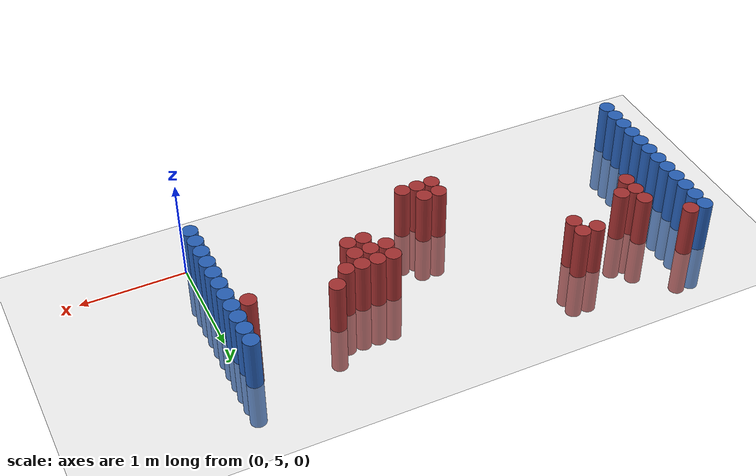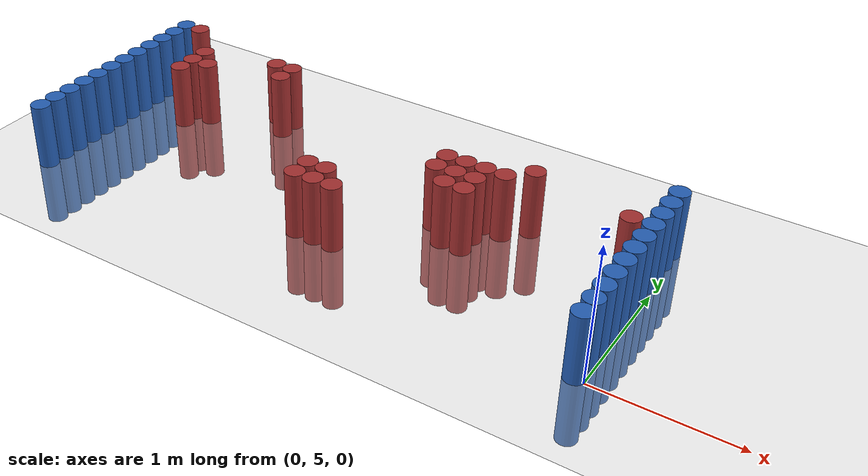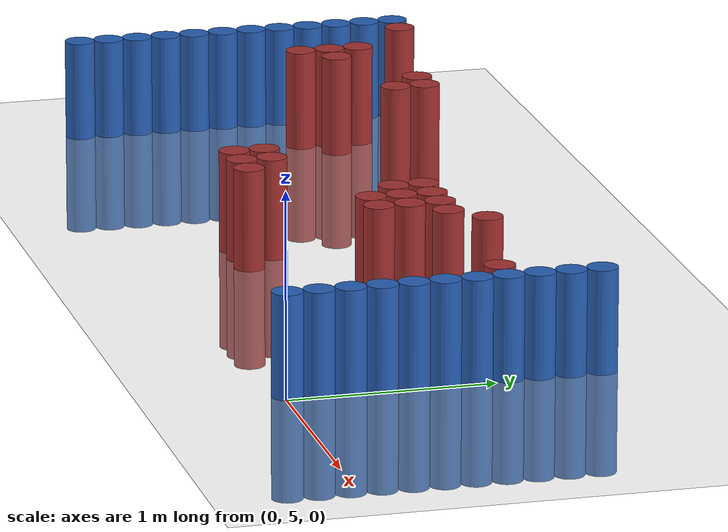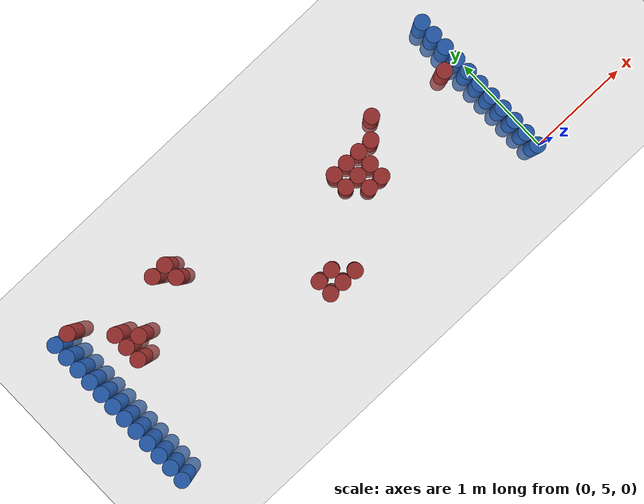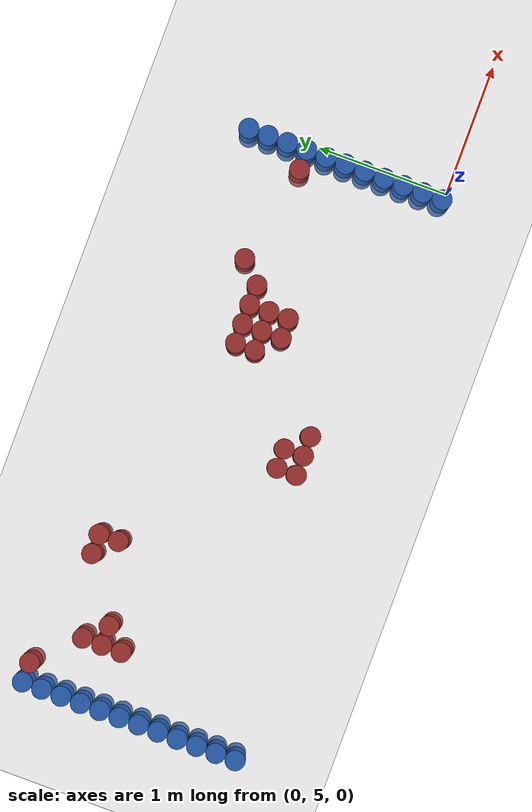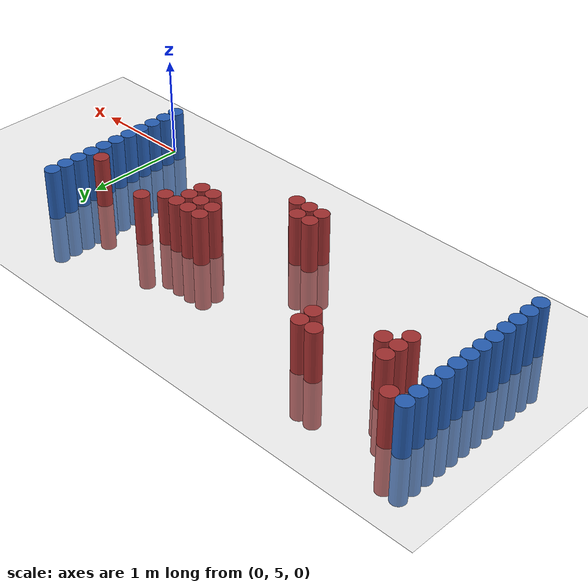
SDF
<sdf version="1.6">
 <world name="default">
  <model name="ground_plane">
   <static>1</static>
   <link name="link">
    <collision name="collision">
     <geometry><plane><normal>0 0 1</normal><size>100 100</size></plane></geometry>
     <surface><friction><ode><mu>100</mu><mu2>50</mu2></ode></friction></surface>
    </collision>
    <visual name="visual">
     <cast_shadows>0</cast_shadows>
     <geometry><plane><normal>0 0 1</normal><size>100 100</size></plane></geometry>
     <material>
      <script><uri>file://media/materials/scripts/gazebo.material</uri><name>Gazebo/Grey</name></script>
     </material>
    </visual>
   </link>
  </model>
  <model name="unit_cylinder_94">
   <static>1</static>
   <pose>-0.075000 5.025000 0.000000 0.000000 0.000000 0.000000</pose>
   <link name="link">
    <inertial>
     <mass>1</mass>
     <inertia><ixx>0.145833</ixx><ixy>0</ixy><ixz>0</ixz><iyy>0.145833</iyy><iyz>0</iyz><izz>0.125</izz></inertia>
    </inertial>
    <collision name="collision">
     <geometry><cylinder><radius>0.075000</radius><length>1</length></cylinder></geometry>
    </collision>
    <visual name="visual">
     <geometry><cylinder><radius>0.075000</radius><length>1</length></cylinder></geometry>
     <material>
      <ambient>0.152000 0.379000 0.720000 1</ambient>
      <diffuse>0.152000 0.379000 0.720000 1</diffuse>
     </material>
     <material>
      <script><name>Gazebo/Grey</name><uri>file://media/materials/scripts/gazebo.material</uri></script>
     </material>
    </visual>
   </link>
  </model>
  <model name="unit_cylinder_95">
   <static>1</static>
   <pose>-4.425000 5.025000 0.000000 0.000000 0.000000 0.000000</pose>
   <link name="link">
    <inertial>
     <mass>1</mass>
     <inertia><ixx>0.145833</ixx><ixy>0</ixy><ixz>0</ixz><iyy>0.145833</iyy><iyz>0</iyz><izz>0.125</izz></inertia>
    </inertial>
    <collision name="collision">
     <geometry><cylinder><radius>0.075000</radius><length>1</length></cylinder></geometry>
    </collision>
    <visual name="visual">
     <geometry><cylinder><radius>0.075000</radius><length>1</length></cylinder></geometry>
     <material>
      <ambient>0.152000 0.379000 0.720000 1</ambient>
      <diffuse>0.152000 0.379000 0.720000 1</diffuse>
     </material>
     <material>
      <script><name>Gazebo/Grey</name><uri>file://media/materials/scripts/gazebo.material</uri></script>
     </material>
    </visual>
   </link>
  </model>
  <model name="unit_cylinder_96">
   <static>1</static>
   <pose>-4.425000 5.175000 0.000000 0.000000 0.000000 0.000000</pose>
   <link name="link">
    <inertial>
     <mass>1</mass>
     <inertia><ixx>0.145833</ixx><ixy>0</ixy><ixz>0</ixz><iyy>0.145833</iyy><iyz>0</iyz><izz>0.125</izz></inertia>
    </inertial>
    <collision name="collision">
     <geometry><cylinder><radius>0.075000</radius><length>1</length></cylinder></geometry>
    </collision>
    <visual name="visual">
     <geometry><cylinder><radius>0.075000</radius><length>1</length></cylinder></geometry>
     <material>
      <ambient>0.152000 0.379000 0.720000 1</ambient>
      <diffuse>0.152000 0.379000 0.720000 1</diffuse>
     </material>
     <material>
      <script><name>Gazebo/Grey</name><uri>file://media/materials/scripts/gazebo.material</uri></script>
     </material>
    </visual>
   </link>
  </model>
  <model name="unit_cylinder_97">
   <static>1</static>
   <pose>-4.425000 5.325000 0.000000 0.000000 0.000000 0.000000</pose>
   <link name="link">
    <inertial>
     <mass>1</mass>
     <inertia><ixx>0.145833</ixx><ixy>0</ixy><ixz>0</ixz><iyy>0.145833</iyy><iyz>0</iyz><izz>0.125</izz></inertia>
    </inertial>
    <collision name="collision">
     <geometry><cylinder><radius>0.075000</radius><length>1</length></cylinder></geometry>
    </collision>
    <visual name="visual">
     <geometry><cylinder><radius>0.075000</radius><length>1</length></cylinder></geometry>
     <material>
      <ambient>0.152000 0.379000 0.720000 1</ambient>
      <diffuse>0.152000 0.379000 0.720000 1</diffuse>
     </material>
     <material>
      <script><name>Gazebo/Grey</name><uri>file://media/materials/scripts/gazebo.material</uri></script>
     </material>
    </visual>
   </link>
  </model>
  <model name="unit_cylinder_98">
   <static>1</static>
   <pose>-4.425000 5.475000 0.000000 0.000000 0.000000 0.000000</pose>
   <link name="link">
    <inertial>
     <mass>1</mass>
     <inertia><ixx>0.145833</ixx><ixy>0</ixy><ixz>0</ixz><iyy>0.145833</iyy><iyz>0</iyz><izz>0.125</izz></inertia>
    </inertial>
    <collision name="collision">
     <geometry><cylinder><radius>0.075000</radius><length>1</length></cylinder></geometry>
    </collision>
    <visual name="visual">
     <geometry><cylinder><radius>0.075000</radius><length>1</length></cylinder></geometry>
     <material>
      <ambient>0.152000 0.379000 0.720000 1</ambient>
      <diffuse>0.152000 0.379000 0.720000 1</diffuse>
     </material>
     <material>
      <script><name>Gazebo/Grey</name><uri>file://media/materials/scripts/gazebo.material</uri></script>
     </material>
    </visual>
   </link>
  </model>
  <model name="unit_cylinder_99">
   <static>1</static>
   <pose>-4.425000 5.625000 0.000000 0.000000 0.000000 0.000000</pose>
   <link name="link">
    <inertial>
     <mass>1</mass>
     <inertia><ixx>0.145833</ixx><ixy>0</ixy><ixz>0</ixz><iyy>0.145833</iyy><iyz>0</iyz><izz>0.125</izz></inertia>
    </inertial>
    <collision name="collision">
     <geometry><cylinder><radius>0.075000</radius><length>1</length></cylinder></geometry>
    </collision>
    <visual name="visual">
     <geometry><cylinder><radius>0.075000</radius><length>1</length></cylinder></geometry>
     <material>
      <ambient>0.152000 0.379000 0.720000 1</ambient>
      <diffuse>0.152000 0.379000 0.720000 1</diffuse>
     </material>
     <material>
      <script><name>Gazebo/Grey</name><uri>file://media/materials/scripts/gazebo.material</uri></script>
     </material>
    </visual>
   </link>
  </model>
  <model name="unit_cylinder_100">
   <static>1</static>
   <pose>-4.425000 5.775000 0.000000 0.000000 0.000000 0.000000</pose>
   <link name="link">
    <inertial>
     <mass>1</mass>
     <inertia><ixx>0.145833</ixx><ixy>0</ixy><ixz>0</ixz><iyy>0.145833</iyy><iyz>0</iyz><izz>0.125</izz></inertia>
    </inertial>
    <collision name="collision">
     <geometry><cylinder><radius>0.075000</radius><length>1</length></cylinder></geometry>
    </collision>
    <visual name="visual">
     <geometry><cylinder><radius>0.075000</radius><length>1</length></cylinder></geometry>
     <material>
      <ambient>0.152000 0.379000 0.720000 1</ambient>
      <diffuse>0.152000 0.379000 0.720000 1</diffuse>
     </material>
     <material>
      <script><name>Gazebo/Grey</name><uri>file://media/materials/scripts/gazebo.material</uri></script>
     </material>
    </visual>
   </link>
  </model>
  <model name="unit_cylinder_101">
   <static>1</static>
   <pose>-4.425000 5.925000 0.000000 0.000000 0.000000 0.000000</pose>
   <link name="link">
    <inertial>
     <mass>1</mass>
     <inertia><ixx>0.145833</ixx><ixy>0</ixy><ixz>0</ixz><iyy>0.145833</iyy><iyz>0</iyz><izz>0.125</izz></inertia>
    </inertial>
    <collision name="collision">
     <geometry><cylinder><radius>0.075000</radius><length>1</length></cylinder></geometry>
    </collision>
    <visual name="visual">
     <geometry><cylinder><radius>0.075000</radius><length>1</length></cylinder></geometry>
     <material>
      <ambient>0.152000 0.379000 0.720000 1</ambient>
      <diffuse>0.152000 0.379000 0.720000 1</diffuse>
     </material>
     <material>
      <script><name>Gazebo/Grey</name><uri>file://media/materials/scripts/gazebo.material</uri></script>
     </material>
    </visual>
   </link>
  </model>
  <model name="unit_cylinder_102">
   <static>1</static>
   <pose>-4.425000 6.075000 0.000000 0.000000 0.000000 0.000000</pose>
   <link name="link">
    <inertial>
     <mass>1</mass>
     <inertia><ixx>0.145833</ixx><ixy>0</ixy><ixz>0</ixz><iyy>0.145833</iyy><iyz>0</iyz><izz>0.125</izz></inertia>
    </inertial>
    <collision name="collision">
     <geometry><cylinder><radius>0.075000</radius><length>1</length></cylinder></geometry>
    </collision>
    <visual name="visual">
     <geometry><cylinder><radius>0.075000</radius><length>1</length></cylinder></geometry>
     <material>
      <ambient>0.152000 0.379000 0.720000 1</ambient>
      <diffuse>0.152000 0.379000 0.720000 1</diffuse>
     </material>
     <material>
      <script><name>Gazebo/Grey</name><uri>file://media/materials/scripts/gazebo.material</uri></script>
     </material>
    </visual>
   </link>
  </model>
  <model name="unit_cylinder_103">
   <static>1</static>
   <pose>-4.425000 6.225000 0.000000 0.000000 0.000000 0.000000</pose>
   <link name="link">
    <inertial>
     <mass>1</mass>
     <inertia><ixx>0.145833</ixx><ixy>0</ixy><ixz>0</ixz><iyy>0.145833</iyy><iyz>0</iyz><izz>0.125</izz></inertia>
    </inertial>
    <collision name="collision">
     <geometry><cylinder><radius>0.075000</radius><length>1</length></cylinder></geometry>
    </collision>
    <visual name="visual">
     <geometry><cylinder><radius>0.075000</radius><length>1</length></cylinder></geometry>
     <material>
      <ambient>0.152000 0.379000 0.720000 1</ambient>
      <diffuse>0.152000 0.379000 0.720000 1</diffuse>
     </material>
     <material>
      <script><name>Gazebo/Grey</name><uri>file://media/materials/scripts/gazebo.material</uri></script>
     </material>
    </visual>
   </link>
  </model>
  <model name="unit_cylinder_104">
   <static>1</static>
   <pose>-4.425000 6.375000 0.000000 0.000000 0.000000 0.000000</pose>
   <link name="link">
    <inertial>
     <mass>1</mass>
     <inertia><ixx>0.145833</ixx><ixy>0</ixy><ixz>0</ixz><iyy>0.145833</iyy><iyz>0</iyz><izz>0.125</izz></inertia>
    </inertial>
    <collision name="collision">
     <geometry><cylinder><radius>0.075000</radius><length>1</length></cylinder></geometry>
    </collision>
    <visual name="visual">
     <geometry><cylinder><radius>0.075000</radius><length>1</length></cylinder></geometry>
     <material>
      <ambient>0.152000 0.379000 0.720000 1</ambient>
      <diffuse>0.152000 0.379000 0.720000 1</diffuse>
     </material>
     <material>
      <script><name>Gazebo/Grey</name><uri>file://media/materials/scripts/gazebo.material</uri></script>
     </material>
    </visual>
   </link>
  </model>
  <model name="unit_cylinder_105">
   <static>1</static>
   <pose>-4.425000 6.525000 0.000000 0.000000 0.000000 0.000000</pose>
   <link name="link">
    <inertial>
     <mass>1</mass>
     <inertia><ixx>0.145833</ixx><ixy>0</ixy><ixz>0</ixz><iyy>0.145833</iyy><iyz>0</iyz><izz>0.125</izz></inertia>
    </inertial>
    <collision name="collision">
     <geometry><cylinder><radius>0.075000</radius><length>1</length></cylinder></geometry>
    </collision>
    <visual name="visual">
     <geometry><cylinder><radius>0.075000</radius><length>1</length></cylinder></geometry>
     <material>
      <ambient>0.152000 0.379000 0.720000 1</ambient>
      <diffuse>0.152000 0.379000 0.720000 1</diffuse>
     </material>
     <material>
      <script><name>Gazebo/Grey</name><uri>file://media/materials/scripts/gazebo.material</uri></script>
     </material>
    </visual>
   </link>
  </model>
  <model name="unit_cylinder_106">
   <static>1</static>
   <pose>-4.425000 6.675000 0.000000 0.000000 0.000000 0.000000</pose>
   <link name="link">
    <inertial>
     <mass>1</mass>
     <inertia><ixx>0.145833</ixx><ixy>0</ixy><ixz>0</ixz><iyy>0.145833</iyy><iyz>0</iyz><izz>0.125</izz></inertia>
    </inertial>
    <collision name="collision">
     <geometry><cylinder><radius>0.075000</radius><length>1</length></cylinder></geometry>
    </collision>
    <visual name="visual">
     <geometry><cylinder><radius>0.075000</radius><length>1</length></cylinder></geometry>
     <material>
      <ambient>0.152000 0.379000 0.720000 1</ambient>
      <diffuse>0.152000 0.379000 0.720000 1</diffuse>
     </material>
     <material>
      <script><name>Gazebo/Grey</name><uri>file://media/materials/scripts/gazebo.material</uri></script>
     </material>
    </visual>
   </link>
  </model>
  <model name="unit_cylinder_126">
   <static>1</static>
   <pose>-4.275000 6.675000 0.000000 0.000000 0.000000 0.000000</pose>
   <link name="link">
    <inertial>
     <mass>1</mass>
     <inertia><ixx>0.145833</ixx><ixy>0</ixy><ixz>0</ixz><iyy>0.145833</iyy><iyz>0</iyz><izz>0.125</izz></inertia>
    </inertial>
    <collision name="collision">
     <geometry><cylinder><radius>0.075000</radius><length>1</length></cylinder></geometry>
    </collision>
    <visual name="visual">
     <geometry><cylinder><radius>0.075000</radius><length>1</length></cylinder></geometry>
     <material>
      <ambient>0.648000 0.192000 0.192000 1</ambient>
      <diffuse>0.648000 0.192000 0.192000 1</diffuse>
     </material>
     <material>
      <script><name>Gazebo/Grey</name><uri>file://media/materials/scripts/gazebo.material</uri></script>
     </material>
    </visual>
   </link>
  </model>
  <model name="unit_cylinder_142">
   <static>1</static>
   <pose>-3.975000 6.075000 0.000000 0.000000 0.000000 0.000000</pose>
   <link name="link">
    <inertial>
     <mass>1</mass>
     <inertia><ixx>0.145833</ixx><ixy>0</ixy><ixz>0</ixz><iyy>0.145833</iyy><iyz>0</iyz><izz>0.125</izz></inertia>
    </inertial>
    <collision name="collision">
     <geometry><cylinder><radius>0.075000</radius><length>1</length></cylinder></geometry>
    </collision>
    <visual name="visual">
     <geometry><cylinder><radius>0.075000</radius><length>1</length></cylinder></geometry>
     <material>
      <ambient>0.648000 0.192000 0.192000 1</ambient>
      <diffuse>0.648000 0.192000 0.192000 1</diffuse>
     </material>
     <material>
      <script><name>Gazebo/Grey</name><uri>file://media/materials/scripts/gazebo.material</uri></script>
     </material>
    </visual>
   </link>
  </model>
  <model name="unit_cylinder_143">
   <static>1</static>
   <pose>-3.975000 6.225000 0.000000 0.000000 0.000000 0.000000</pose>
   <link name="link">
    <inertial>
     <mass>1</mass>
     <inertia><ixx>0.145833</ixx><ixy>0</ixy><ixz>0</ixz><iyy>0.145833</iyy><iyz>0</iyz><izz>0.125</izz></inertia>
    </inertial>
    <collision name="collision">
     <geometry><cylinder><radius>0.075000</radius><length>1</length></cylinder></geometry>
    </collision>
    <visual name="visual">
     <geometry><cylinder><radius>0.075000</radius><length>1</length></cylinder></geometry>
     <material>
      <ambient>0.648000 0.192000 0.192000 1</ambient>
      <diffuse>0.648000 0.192000 0.192000 1</diffuse>
     </material>
     <material>
      <script><name>Gazebo/Grey</name><uri>file://media/materials/scripts/gazebo.material</uri></script>
     </material>
    </visual>
   </link>
  </model>
  <model name="unit_cylinder_144">
   <static>1</static>
   <pose>-3.975000 6.375000 0.000000 0.000000 0.000000 0.000000</pose>
   <link name="link">
    <inertial>
     <mass>1</mass>
     <inertia><ixx>0.145833</ixx><ixy>0</ixy><ixz>0</ixz><iyy>0.145833</iyy><iyz>0</iyz><izz>0.125</izz></inertia>
    </inertial>
    <collision name="collision">
     <geometry><cylinder><radius>0.075000</radius><length>1</length></cylinder></geometry>
    </collision>
    <visual name="visual">
     <geometry><cylinder><radius>0.075000</radius><length>1</length></cylinder></geometry>
     <material>
      <ambient>0.648000 0.192000 0.192000 1</ambient>
      <diffuse>0.648000 0.192000 0.192000 1</diffuse>
     </material>
     <material>
      <script><name>Gazebo/Grey</name><uri>file://media/materials/scripts/gazebo.material</uri></script>
     </material>
    </visual>
   </link>
  </model>
  <model name="unit_cylinder_148">
   <static>1</static>
   <pose>-3.825000 6.225000 0.000000 0.000000 0.000000 0.000000</pose>
   <link name="link">
    <inertial>
     <mass>1</mass>
     <inertia><ixx>0.145833</ixx><ixy>0</ixy><ixz>0</ixz><iyy>0.145833</iyy><iyz>0</iyz><izz>0.125</izz></inertia>
    </inertial>
    <collision name="collision">
     <geometry><cylinder><radius>0.075000</radius><length>1</length></cylinder></geometry>
    </collision>
    <visual name="visual">
     <geometry><cylinder><radius>0.075000</radius><length>1</length></cylinder></geometry>
     <material>
      <ambient>0.648000 0.192000 0.192000 1</ambient>
      <diffuse>0.648000 0.192000 0.192000 1</diffuse>
     </material>
     <material>
      <script><name>Gazebo/Grey</name><uri>file://media/materials/scripts/gazebo.material</uri></script>
     </material>
    </visual>
   </link>
  </model>
  <model name="unit_cylinder_154">
   <static>1</static>
   <pose>-3.375000 6.525000 0.000000 0.000000 0.000000 0.000000</pose>
   <link name="link">
    <inertial>
     <mass>1</mass>
     <inertia><ixx>0.145833</ixx><ixy>0</ixy><ixz>0</ixz><iyy>0.145833</iyy><iyz>0</iyz><izz>0.125</izz></inertia>
    </inertial>
    <collision name="collision">
     <geometry><cylinder><radius>0.075000</radius><length>1</length></cylinder></geometry>
    </collision>
    <visual name="visual">
     <geometry><cylinder><radius>0.075000</radius><length>1</length></cylinder></geometry>
     <material>
      <ambient>0.648000 0.192000 0.192000 1</ambient>
      <diffuse>0.648000 0.192000 0.192000 1</diffuse>
     </material>
     <material>
      <script><name>Gazebo/Grey</name><uri>file://media/materials/scripts/gazebo.material</uri></script>
     </material>
    </visual>
   </link>
  </model>
  <model name="unit_cylinder_157">
   <static>1</static>
   <pose>-3.225000 6.375000 0.000000 0.000000 0.000000 0.000000</pose>
   <link name="link">
    <inertial>
     <mass>1</mass>
     <inertia><ixx>0.145833</ixx><ixy>0</ixy><ixz>0</ixz><iyy>0.145833</iyy><iyz>0</iyz><izz>0.125</izz></inertia>
    </inertial>
    <collision name="collision">
     <geometry><cylinder><radius>0.075000</radius><length>1</length></cylinder></geometry>
    </collision>
    <visual name="visual">
     <geometry><cylinder><radius>0.075000</radius><length>1</length></cylinder></geometry>
     <material>
      <ambient>0.648000 0.192000 0.192000 1</ambient>
      <diffuse>0.648000 0.192000 0.192000 1</diffuse>
     </material>
     <material>
      <script><name>Gazebo/Grey</name><uri>file://media/materials/scripts/gazebo.material</uri></script>
     </material>
    </visual>
   </link>
  </model>
  <model name="unit_cylinder_158">
   <static>1</static>
   <pose>-3.225000 6.525000 0.000000 0.000000 0.000000 0.000000</pose>
   <link name="link">
    <inertial>
     <mass>1</mass>
     <inertia><ixx>0.145833</ixx><ixy>0</ixy><ixz>0</ixz><iyy>0.145833</iyy><iyz>0</iyz><izz>0.125</izz></inertia>
    </inertial>
    <collision name="collision">
     <geometry><cylinder><radius>0.075000</radius><length>1</length></cylinder></geometry>
    </collision>
    <visual name="visual">
     <geometry><cylinder><radius>0.075000</radius><length>1</length></cylinder></geometry>
     <material>
      <ambient>0.648000 0.192000 0.192000 1</ambient>
      <diffuse>0.648000 0.192000 0.192000 1</diffuse>
     </material>
     <material>
      <script><name>Gazebo/Grey</name><uri>file://media/materials/scripts/gazebo.material</uri></script>
     </material>
    </visual>
   </link>
  </model>
  <model name="unit_cylinder_169">
   <static>1</static>
   <pose>-2.325000 5.325000 0.000000 0.000000 0.000000 0.000000</pose>
   <link name="link">
    <inertial>
     <mass>1</mass>
     <inertia><ixx>0.145833</ixx><ixy>0</ixy><ixz>0</ixz><iyy>0.145833</iyy><iyz>0</iyz><izz>0.125</izz></inertia>
    </inertial>
    <collision name="collision">
     <geometry><cylinder><radius>0.075000</radius><length>1</length></cylinder></geometry>
    </collision>
    <visual name="visual">
     <geometry><cylinder><radius>0.075000</radius><length>1</length></cylinder></geometry>
     <material>
      <ambient>0.648000 0.192000 0.192000 1</ambient>
      <diffuse>0.648000 0.192000 0.192000 1</diffuse>
     </material>
     <material>
      <script><name>Gazebo/Grey</name><uri>file://media/materials/scripts/gazebo.material</uri></script>
     </material>
    </visual>
   </link>
  </model>
  <model name="unit_cylinder_170">
   <static>1</static>
   <pose>-2.325000 5.475000 0.000000 0.000000 0.000000 0.000000</pose>
   <link name="link">
    <inertial>
     <mass>1</mass>
     <inertia><ixx>0.145833</ixx><ixy>0</ixy><ixz>0</ixz><iyy>0.145833</iyy><iyz>0</iyz><izz>0.125</izz></inertia>
    </inertial>
    <collision name="collision">
     <geometry><cylinder><radius>0.075000</radius><length>1</length></cylinder></geometry>
    </collision>
    <visual name="visual">
     <geometry><cylinder><radius>0.075000</radius><length>1</length></cylinder></geometry>
     <material>
      <ambient>0.648000 0.192000 0.192000 1</ambient>
      <diffuse>0.648000 0.192000 0.192000 1</diffuse>
     </material>
     <material>
      <script><name>Gazebo/Grey</name><uri>file://media/materials/scripts/gazebo.material</uri></script>
     </material>
    </visual>
   </link>
  </model>
  <model name="unit_cylinder_175">
   <static>1</static>
   <pose>-2.175000 5.325000 0.000000 0.000000 0.000000 0.000000</pose>
   <link name="link">
    <inertial>
     <mass>1</mass>
     <inertia><ixx>0.145833</ixx><ixy>0</ixy><ixz>0</ixz><iyy>0.145833</iyy><iyz>0</iyz><izz>0.125</izz></inertia>
    </inertial>
    <collision name="collision">
     <geometry><cylinder><radius>0.075000</radius><length>1</length></cylinder></geometry>
    </collision>
    <visual name="visual">
     <geometry><cylinder><radius>0.075000</radius><length>1</length></cylinder></geometry>
     <material>
      <ambient>0.648000 0.192000 0.192000 1</ambient>
      <diffuse>0.648000 0.192000 0.192000 1</diffuse>
     </material>
     <material>
      <script><name>Gazebo/Grey</name><uri>file://media/materials/scripts/gazebo.material</uri></script>
     </material>
    </visual>
   </link>
  </model>
  <model name="unit_cylinder_176">
   <static>1</static>
   <pose>-2.175000 5.475000 0.000000 0.000000 0.000000 0.000000</pose>
   <link name="link">
    <inertial>
     <mass>1</mass>
     <inertia><ixx>0.145833</ixx><ixy>0</ixy><ixz>0</ixz><iyy>0.145833</iyy><iyz>0</iyz><izz>0.125</izz></inertia>
    </inertial>
    <collision name="collision">
     <geometry><cylinder><radius>0.075000</radius><length>1</length></cylinder></geometry>
    </collision>
    <visual name="visual">
     <geometry><cylinder><radius>0.075000</radius><length>1</length></cylinder></geometry>
     <material>
      <ambient>0.648000 0.192000 0.192000 1</ambient>
      <diffuse>0.648000 0.192000 0.192000 1</diffuse>
     </material>
     <material>
      <script><name>Gazebo/Grey</name><uri>file://media/materials/scripts/gazebo.material</uri></script>
     </material>
    </visual>
   </link>
  </model>
  <model name="unit_cylinder_180">
   <static>1</static>
   <pose>-2.025000 5.325000 0.000000 0.000000 0.000000 0.000000</pose>
   <link name="link">
    <inertial>
     <mass>1</mass>
     <inertia><ixx>0.145833</ixx><ixy>0</ixy><ixz>0</ixz><iyy>0.145833</iyy><iyz>0</iyz><izz>0.125</izz></inertia>
    </inertial>
    <collision name="collision">
     <geometry><cylinder><radius>0.075000</radius><length>1</length></cylinder></geometry>
    </collision>
    <visual name="visual">
     <geometry><cylinder><radius>0.075000</radius><length>1</length></cylinder></geometry>
     <material>
      <ambient>0.648000 0.192000 0.192000 1</ambient>
      <diffuse>0.648000 0.192000 0.192000 1</diffuse>
     </material>
     <material>
      <script><name>Gazebo/Grey</name><uri>file://media/materials/scripts/gazebo.material</uri></script>
     </material>
    </visual>
   </link>
  </model>
  <model name="unit_cylinder_182">
   <static>1</static>
   <pose>-1.575000 5.925000 0.000000 0.000000 0.000000 0.000000</pose>
   <link name="link">
    <inertial>
     <mass>1</mass>
     <inertia><ixx>0.145833</ixx><ixy>0</ixy><ixz>0</ixz><iyy>0.145833</iyy><iyz>0</iyz><izz>0.125</izz></inertia>
    </inertial>
    <collision name="collision">
     <geometry><cylinder><radius>0.075000</radius><length>1</length></cylinder></geometry>
    </collision>
    <visual name="visual">
     <geometry><cylinder><radius>0.075000</radius><length>1</length></cylinder></geometry>
     <material>
      <ambient>0.648000 0.192000 0.192000 1</ambient>
      <diffuse>0.648000 0.192000 0.192000 1</diffuse>
     </material>
     <material>
      <script><name>Gazebo/Grey</name><uri>file://media/materials/scripts/gazebo.material</uri></script>
     </material>
    </visual>
   </link>
  </model>
  <model name="unit_cylinder_183">
   <static>1</static>
   <pose>-1.575000 6.075000 0.000000 0.000000 0.000000 0.000000</pose>
   <link name="link">
    <inertial>
     <mass>1</mass>
     <inertia><ixx>0.145833</ixx><ixy>0</ixy><ixz>0</ixz><iyy>0.145833</iyy><iyz>0</iyz><izz>0.125</izz></inertia>
    </inertial>
    <collision name="collision">
     <geometry><cylinder><radius>0.075000</radius><length>1</length></cylinder></geometry>
    </collision>
    <visual name="visual">
     <geometry><cylinder><radius>0.075000</radius><length>1</length></cylinder></geometry>
     <material>
      <ambient>0.648000 0.192000 0.192000 1</ambient>
      <diffuse>0.648000 0.192000 0.192000 1</diffuse>
     </material>
     <material>
      <script><name>Gazebo/Grey</name><uri>file://media/materials/scripts/gazebo.material</uri></script>
     </material>
    </visual>
   </link>
  </model>
  <model name="unit_cylinder_186">
   <static>1</static>
   <pose>-1.425000 5.775000 0.000000 0.000000 0.000000 0.000000</pose>
   <link name="link">
    <inertial>
     <mass>1</mass>
     <inertia><ixx>0.145833</ixx><ixy>0</ixy><ixz>0</ixz><iyy>0.145833</iyy><iyz>0</iyz><izz>0.125</izz></inertia>
    </inertial>
    <collision name="collision">
     <geometry><cylinder><radius>0.075000</radius><length>1</length></cylinder></geometry>
    </collision>
    <visual name="visual">
     <geometry><cylinder><radius>0.075000</radius><length>1</length></cylinder></geometry>
     <material>
      <ambient>0.648000 0.192000 0.192000 1</ambient>
      <diffuse>0.648000 0.192000 0.192000 1</diffuse>
     </material>
     <material>
      <script><name>Gazebo/Grey</name><uri>file://media/materials/scripts/gazebo.material</uri></script>
     </material>
    </visual>
   </link>
  </model>
  <model name="unit_cylinder_187">
   <static>1</static>
   <pose>-1.425000 5.925000 0.000000 0.000000 0.000000 0.000000</pose>
   <link name="link">
    <inertial>
     <mass>1</mass>
     <inertia><ixx>0.145833</ixx><ixy>0</ixy><ixz>0</ixz><iyy>0.145833</iyy><iyz>0</iyz><izz>0.125</izz></inertia>
    </inertial>
    <collision name="collision">
     <geometry><cylinder><radius>0.075000</radius><length>1</length></cylinder></geometry>
    </collision>
    <visual name="visual">
     <geometry><cylinder><radius>0.075000</radius><length>1</length></cylinder></geometry>
     <material>
      <ambient>0.648000 0.192000 0.192000 1</ambient>
      <diffuse>0.648000 0.192000 0.192000 1</diffuse>
     </material>
     <material>
      <script><name>Gazebo/Grey</name><uri>file://media/materials/scripts/gazebo.material</uri></script>
     </material>
    </visual>
   </link>
  </model>
  <model name="unit_cylinder_188">
   <static>1</static>
   <pose>-1.425000 6.075000 0.000000 0.000000 0.000000 0.000000</pose>
   <link name="link">
    <inertial>
     <mass>1</mass>
     <inertia><ixx>0.145833</ixx><ixy>0</ixy><ixz>0</ixz><iyy>0.145833</iyy><iyz>0</iyz><izz>0.125</izz></inertia>
    </inertial>
    <collision name="collision">
     <geometry><cylinder><radius>0.075000</radius><length>1</length></cylinder></geometry>
    </collision>
    <visual name="visual">
     <geometry><cylinder><radius>0.075000</radius><length>1</length></cylinder></geometry>
     <material>
      <ambient>0.648000 0.192000 0.192000 1</ambient>
      <diffuse>0.648000 0.192000 0.192000 1</diffuse>
     </material>
     <material>
      <script><name>Gazebo/Grey</name><uri>file://media/materials/scripts/gazebo.material</uri></script>
     </material>
    </visual>
   </link>
  </model>
  <model name="unit_cylinder_190">
   <static>1</static>
   <pose>-1.275000 5.775000 0.000000 0.000000 0.000000 0.000000</pose>
   <link name="link">
    <inertial>
     <mass>1</mass>
     <inertia><ixx>0.145833</ixx><ixy>0</ixy><ixz>0</ixz><iyy>0.145833</iyy><iyz>0</iyz><izz>0.125</izz></inertia>
    </inertial>
    <collision name="collision">
     <geometry><cylinder><radius>0.075000</radius><length>1</length></cylinder></geometry>
    </collision>
    <visual name="visual">
     <geometry><cylinder><radius>0.075000</radius><length>1</length></cylinder></geometry>
     <material>
      <ambient>0.648000 0.192000 0.192000 1</ambient>
      <diffuse>0.648000 0.192000 0.192000 1</diffuse>
     </material>
     <material>
      <script><name>Gazebo/Grey</name><uri>file://media/materials/scripts/gazebo.material</uri></script>
     </material>
    </visual>
   </link>
  </model>
  <model name="unit_cylinder_191">
   <static>1</static>
   <pose>-1.275000 5.925000 0.000000 0.000000 0.000000 0.000000</pose>
   <link name="link">
    <inertial>
     <mass>1</mass>
     <inertia><ixx>0.145833</ixx><ixy>0</ixy><ixz>0</ixz><iyy>0.145833</iyy><iyz>0</iyz><izz>0.125</izz></inertia>
    </inertial>
    <collision name="collision">
     <geometry><cylinder><radius>0.075000</radius><length>1</length></cylinder></geometry>
    </collision>
    <visual name="visual">
     <geometry><cylinder><radius>0.075000</radius><length>1</length></cylinder></geometry>
     <material>
      <ambient>0.648000 0.192000 0.192000 1</ambient>
      <diffuse>0.648000 0.192000 0.192000 1</diffuse>
     </material>
     <material>
      <script><name>Gazebo/Grey</name><uri>file://media/materials/scripts/gazebo.material</uri></script>
     </material>
    </visual>
   </link>
  </model>
  <model name="unit_cylinder_192">
   <static>1</static>
   <pose>-1.275000 6.075000 0.000000 0.000000 0.000000 0.000000</pose>
   <link name="link">
    <inertial>
     <mass>1</mass>
     <inertia><ixx>0.145833</ixx><ixy>0</ixy><ixz>0</ixz><iyy>0.145833</iyy><iyz>0</iyz><izz>0.125</izz></inertia>
    </inertial>
    <collision name="collision">
     <geometry><cylinder><radius>0.075000</radius><length>1</length></cylinder></geometry>
    </collision>
    <visual name="visual">
     <geometry><cylinder><radius>0.075000</radius><length>1</length></cylinder></geometry>
     <material>
      <ambient>0.648000 0.192000 0.192000 1</ambient>
      <diffuse>0.648000 0.192000 0.192000 1</diffuse>
     </material>
     <material>
      <script><name>Gazebo/Grey</name><uri>file://media/materials/scripts/gazebo.material</uri></script>
     </material>
    </visual>
   </link>
  </model>
  <model name="unit_cylinder_193">
   <static>1</static>
   <pose>-1.125000 6.075000 0.000000 0.000000 0.000000 0.000000</pose>
   <link name="link">
    <inertial>
     <mass>1</mass>
     <inertia><ixx>0.145833</ixx><ixy>0</ixy><ixz>0</ixz><iyy>0.145833</iyy><iyz>0</iyz><izz>0.125</izz></inertia>
    </inertial>
    <collision name="collision">
     <geometry><cylinder><radius>0.075000</radius><length>1</length></cylinder></geometry>
    </collision>
    <visual name="visual">
     <geometry><cylinder><radius>0.075000</radius><length>1</length></cylinder></geometry>
     <material>
      <ambient>0.648000 0.192000 0.192000 1</ambient>
      <diffuse>0.648000 0.192000 0.192000 1</diffuse>
     </material>
     <material>
      <script><name>Gazebo/Grey</name><uri>file://media/materials/scripts/gazebo.material</uri></script>
     </material>
    </visual>
   </link>
  </model>
  <model name="unit_cylinder_194">
   <static>1</static>
   <pose>-0.975000 6.225000 0.000000 0.000000 0.000000 0.000000</pose>
   <link name="link">
    <inertial>
     <mass>1</mass>
     <inertia><ixx>0.145833</ixx><ixy>0</ixy><ixz>0</ixz><iyy>0.145833</iyy><iyz>0</iyz><izz>0.125</izz></inertia>
    </inertial>
    <collision name="collision">
     <geometry><cylinder><radius>0.075000</radius><length>1</length></cylinder></geometry>
    </collision>
    <visual name="visual">
     <geometry><cylinder><radius>0.075000</radius><length>1</length></cylinder></geometry>
     <material>
      <ambient>0.648000 0.192000 0.192000 1</ambient>
      <diffuse>0.648000 0.192000 0.192000 1</diffuse>
     </material>
     <material>
      <script><name>Gazebo/Grey</name><uri>file://media/materials/scripts/gazebo.material</uri></script>
     </material>
    </visual>
   </link>
  </model>
  <model name="unit_cylinder_196">
   <static>1</static>
   <pose>-0.225000 6.075000 0.000000 0.000000 0.000000 0.000000</pose>
   <link name="link">
    <inertial>
     <mass>1</mass>
     <inertia><ixx>0.145833</ixx><ixy>0</ixy><ixz>0</ixz><iyy>0.145833</iyy><iyz>0</iyz><izz>0.125</izz></inertia>
    </inertial>
    <collision name="collision">
     <geometry><cylinder><radius>0.075000</radius><length>1</length></cylinder></geometry>
    </collision>
    <visual name="visual">
     <geometry><cylinder><radius>0.075000</radius><length>1</length></cylinder></geometry>
     <material>
      <ambient>0.648000 0.192000 0.192000 1</ambient>
      <diffuse>0.648000 0.192000 0.192000 1</diffuse>
     </material>
     <material>
      <script><name>Gazebo/Grey</name><uri>file://media/materials/scripts/gazebo.material</uri></script>
     </material>
    </visual>
   </link>
  </model>
  <model name="unit_cylinder_205">
   <static>1</static>
   <pose>-0.075000 5.175000 0.000000 0.000000 0.000000 0.000000</pose>
   <link name="link">
    <inertial>
     <mass>1</mass>
     <inertia><ixx>0.145833</ixx><ixy>0</ixy><ixz>0</ixz><iyy>0.145833</iyy><iyz>0</iyz><izz>0.125</izz></inertia>
    </inertial>
    <collision name="collision">
     <geometry><cylinder><radius>0.075000</radius><length>1</length></cylinder></geometry>
    </collision>
    <visual name="visual">
     <geometry><cylinder><radius>0.075000</radius><length>1</length></cylinder></geometry>
     <material>
      <ambient>0.152000 0.379000 0.720000 1</ambient>
      <diffuse>0.152000 0.379000 0.720000 1</diffuse>
     </material>
     <material>
      <script><name>Gazebo/Grey</name><uri>file://media/materials/scripts/gazebo.material</uri></script>
     </material>
    </visual>
   </link>
  </model>
  <model name="unit_cylinder_206">
   <static>1</static>
   <pose>-0.075000 5.325000 0.000000 0.000000 0.000000 0.000000</pose>
   <link name="link">
    <inertial>
     <mass>1</mass>
     <inertia><ixx>0.145833</ixx><ixy>0</ixy><ixz>0</ixz><iyy>0.145833</iyy><iyz>0</iyz><izz>0.125</izz></inertia>
    </inertial>
    <collision name="collision">
     <geometry><cylinder><radius>0.075000</radius><length>1</length></cylinder></geometry>
    </collision>
    <visual name="visual">
     <geometry><cylinder><radius>0.075000</radius><length>1</length></cylinder></geometry>
     <material>
      <ambient>0.152000 0.379000 0.720000 1</ambient>
      <diffuse>0.152000 0.379000 0.720000 1</diffuse>
     </material>
     <material>
      <script><name>Gazebo/Grey</name><uri>file://media/materials/scripts/gazebo.material</uri></script>
     </material>
    </visual>
   </link>
  </model>
  <model name="unit_cylinder_207">
   <static>1</static>
   <pose>-0.075000 5.475000 0.000000 0.000000 0.000000 0.000000</pose>
   <link name="link">
    <inertial>
     <mass>1</mass>
     <inertia><ixx>0.145833</ixx><ixy>0</ixy><ixz>0</ixz><iyy>0.145833</iyy><iyz>0</iyz><izz>0.125</izz></inertia>
    </inertial>
    <collision name="collision">
     <geometry><cylinder><radius>0.075000</radius><length>1</length></cylinder></geometry>
    </collision>
    <visual name="visual">
     <geometry><cylinder><radius>0.075000</radius><length>1</length></cylinder></geometry>
     <material>
      <ambient>0.152000 0.379000 0.720000 1</ambient>
      <diffuse>0.152000 0.379000 0.720000 1</diffuse>
     </material>
     <material>
      <script><name>Gazebo/Grey</name><uri>file://media/materials/scripts/gazebo.material</uri></script>
     </material>
    </visual>
   </link>
  </model>
  <model name="unit_cylinder_208">
   <static>1</static>
   <pose>-0.075000 5.625000 0.000000 0.000000 0.000000 0.000000</pose>
   <link name="link">
    <inertial>
     <mass>1</mass>
     <inertia><ixx>0.145833</ixx><ixy>0</ixy><ixz>0</ixz><iyy>0.145833</iyy><iyz>0</iyz><izz>0.125</izz></inertia>
    </inertial>
    <collision name="collision">
     <geometry><cylinder><radius>0.075000</radius><length>1</length></cylinder></geometry>
    </collision>
    <visual name="visual">
     <geometry><cylinder><radius>0.075000</radius><length>1</length></cylinder></geometry>
     <material>
      <ambient>0.152000 0.379000 0.720000 1</ambient>
      <diffuse>0.152000 0.379000 0.720000 1</diffuse>
     </material>
     <material>
      <script><name>Gazebo/Grey</name><uri>file://media/materials/scripts/gazebo.material</uri></script>
     </material>
    </visual>
   </link>
  </model>
  <model name="unit_cylinder_209">
   <static>1</static>
   <pose>-0.075000 5.775000 0.000000 0.000000 0.000000 0.000000</pose>
   <link name="link">
    <inertial>
     <mass>1</mass>
     <inertia><ixx>0.145833</ixx><ixy>0</ixy><ixz>0</ixz><iyy>0.145833</iyy><iyz>0</iyz><izz>0.125</izz></inertia>
    </inertial>
    <collision name="collision">
     <geometry><cylinder><radius>0.075000</radius><length>1</length></cylinder></geometry>
    </collision>
    <visual name="visual">
     <geometry><cylinder><radius>0.075000</radius><length>1</length></cylinder></geometry>
     <material>
      <ambient>0.152000 0.379000 0.720000 1</ambient>
      <diffuse>0.152000 0.379000 0.720000 1</diffuse>
     </material>
     <material>
      <script><name>Gazebo/Grey</name><uri>file://media/materials/scripts/gazebo.material</uri></script>
     </material>
    </visual>
   </link>
  </model>
  <model name="unit_cylinder_210">
   <static>1</static>
   <pose>-0.075000 5.925000 0.000000 0.000000 0.000000 0.000000</pose>
   <link name="link">
    <inertial>
     <mass>1</mass>
     <inertia><ixx>0.145833</ixx><ixy>0</ixy><ixz>0</ixz><iyy>0.145833</iyy><iyz>0</iyz><izz>0.125</izz></inertia>
    </inertial>
    <collision name="collision">
     <geometry><cylinder><radius>0.075000</radius><length>1</length></cylinder></geometry>
    </collision>
    <visual name="visual">
     <geometry><cylinder><radius>0.075000</radius><length>1</length></cylinder></geometry>
     <material>
      <ambient>0.152000 0.379000 0.720000 1</ambient>
      <diffuse>0.152000 0.379000 0.720000 1</diffuse>
     </material>
     <material>
      <script><name>Gazebo/Grey</name><uri>file://media/materials/scripts/gazebo.material</uri></script>
     </material>
    </visual>
   </link>
  </model>
  <model name="unit_cylinder_211">
   <static>1</static>
   <pose>-0.075000 6.075000 0.000000 0.000000 0.000000 0.000000</pose>
   <link name="link">
    <inertial>
     <mass>1</mass>
     <inertia><ixx>0.145833</ixx><ixy>0</ixy><ixz>0</ixz><iyy>0.145833</iyy><iyz>0</iyz><izz>0.125</izz></inertia>
    </inertial>
    <collision name="collision">
     <geometry><cylinder><radius>0.075000</radius><length>1</length></cylinder></geometry>
    </collision>
    <visual name="visual">
     <geometry><cylinder><radius>0.075000</radius><length>1</length></cylinder></geometry>
     <material>
      <ambient>0.152000 0.379000 0.720000 1</ambient>
      <diffuse>0.152000 0.379000 0.720000 1</diffuse>
     </material>
     <material>
      <script><name>Gazebo/Grey</name><uri>file://media/materials/scripts/gazebo.material</uri></script>
     </material>
    </visual>
   </link>
  </model>
  <model name="unit_cylinder_212">
   <static>1</static>
   <pose>-0.075000 6.225000 0.000000 0.000000 0.000000 0.000000</pose>
   <link name="link">
    <inertial>
     <mass>1</mass>
     <inertia><ixx>0.145833</ixx><ixy>0</ixy><ixz>0</ixz><iyy>0.145833</iyy><iyz>0</iyz><izz>0.125</izz></inertia>
    </inertial>
    <collision name="collision">
     <geometry><cylinder><radius>0.075000</radius><length>1</length></cylinder></geometry>
    </collision>
    <visual name="visual">
     <geometry><cylinder><radius>0.075000</radius><length>1</length></cylinder></geometry>
     <material>
      <ambient>0.152000 0.379000 0.720000 1</ambient>
      <diffuse>0.152000 0.379000 0.720000 1</diffuse>
     </material>
     <material>
      <script><name>Gazebo/Grey</name><uri>file://media/materials/scripts/gazebo.material</uri></script>
     </material>
    </visual>
   </link>
  </model>
  <model name="unit_cylinder_213">
   <static>1</static>
   <pose>-0.075000 6.375000 0.000000 0.000000 0.000000 0.000000</pose>
   <link name="link">
    <inertial>
     <mass>1</mass>
     <inertia><ixx>0.145833</ixx><ixy>0</ixy><ixz>0</ixz><iyy>0.145833</iyy><iyz>0</iyz><izz>0.125</izz></inertia>
    </inertial>
    <collision name="collision">
     <geometry><cylinder><radius>0.075000</radius><length>1</length></cylinder></geometry>
    </collision>
    <visual name="visual">
     <geometry><cylinder><radius>0.075000</radius><length>1</length></cylinder></geometry>
     <material>
      <ambient>0.152000 0.379000 0.720000 1</ambient>
      <diffuse>0.152000 0.379000 0.720000 1</diffuse>
     </material>
     <material>
      <script><name>Gazebo/Grey</name><uri>file://media/materials/scripts/gazebo.material</uri></script>
     </material>
    </visual>
   </link>
  </model>
  <model name="unit_cylinder_214">
   <static>1</static>
   <pose>-0.075000 6.525000 0.000000 0.000000 0.000000 0.000000</pose>
   <link name="link">
    <inertial>
     <mass>1</mass>
     <inertia><ixx>0.145833</ixx><ixy>0</ixy><ixz>0</ixz><iyy>0.145833</iyy><iyz>0</iyz><izz>0.125</izz></inertia>
    </inertial>
    <collision name="collision">
     <geometry><cylinder><radius>0.075000</radius><length>1</length></cylinder></geometry>
    </collision>
    <visual name="visual">
     <geometry><cylinder><radius>0.075000</radius><length>1</length></cylinder></geometry>
     <material>
      <ambient>0.152000 0.379000 0.720000 1</ambient>
      <diffuse>0.152000 0.379000 0.720000 1</diffuse>
     </material>
     <material>
      <script><name>Gazebo/Grey</name><uri>file://media/materials/scripts/gazebo.material</uri></script>
     </material>
    </visual>
   </link>
  </model>
 </world>
</sdf>
